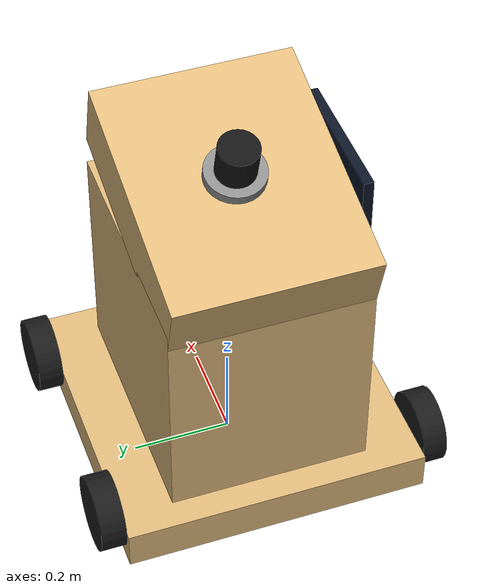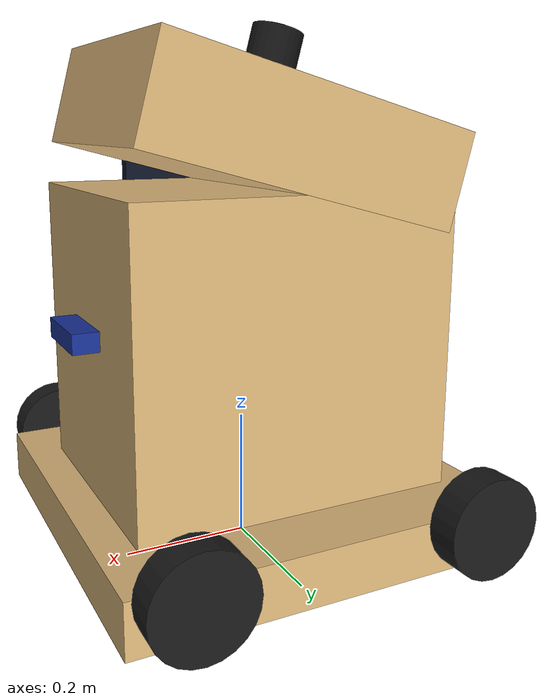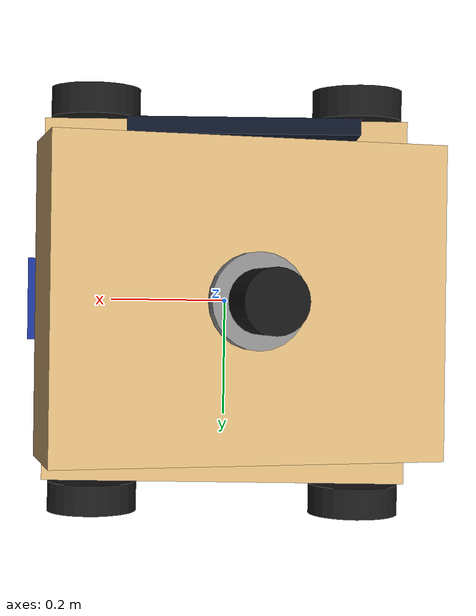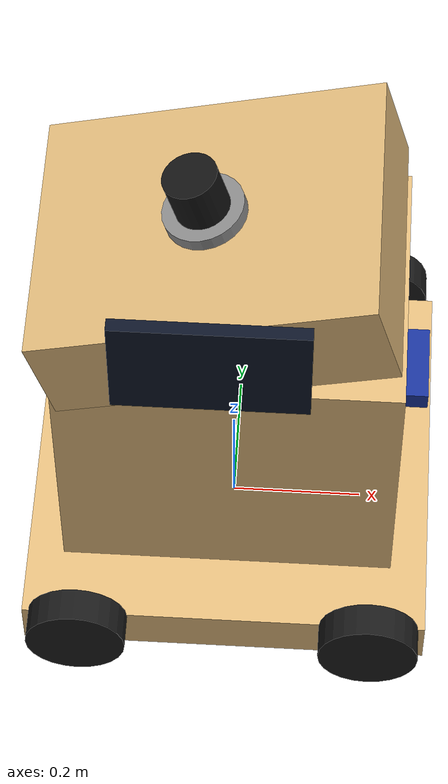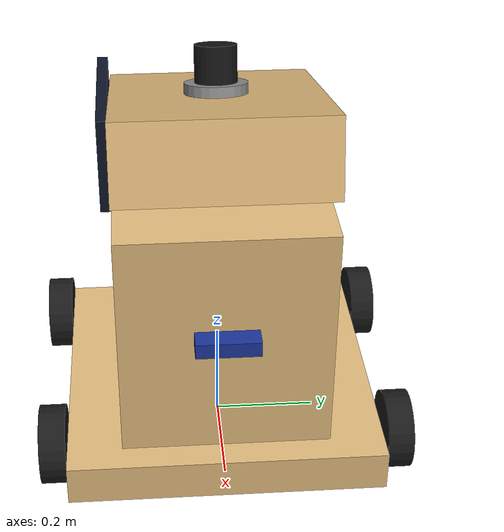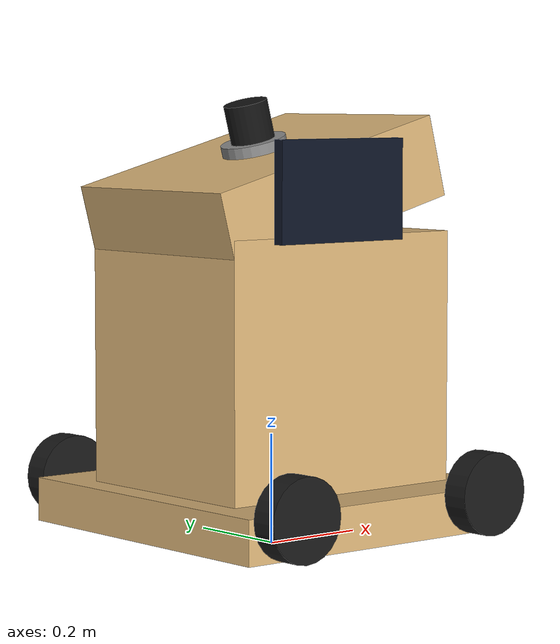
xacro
<?xml version="1.0"?>
<robot name="mobile_robot" xmlns:xacro="http://www.ros.org/wiki/xacro">

  <!-- Include materials and macros -->
  <xacro:include filename="$(find mobile_robot)/urdf/materials.xacro" />
  <xacro:include filename="$(find mobile_robot)/urdf/macros.xacro" />

  <!-- ======= ROBOT PROPERTIES ======= -->
  <!-- Base dimensions (2ft x 2ft x ~0.1m platform) -->
  <xacro:property name="base_length"  value="0.610" />  <!-- 2 ft -->
  <xacro:property name="base_width"   value="0.610" />  <!-- 2 ft -->
  <xacro:property name="base_height"  value="0.08"  />  <!-- platform thickness -->

  <!-- Main body (kiosk cabinet) -->
  <xacro:property name="body_length"  value="0.500" />
  <xacro:property name="body_width"   value="0.400" />
  <xacro:property name="body_height"  value="0.457" />  <!-- 1.5 ft -->

  <!-- Touchpad angled top section -->
  <xacro:property name="top_length"   value="0.500" />
  <xacro:property name="top_width"    value="0.400" />
  <xacro:property name="top_height"   value="0.15"  />

  <!-- LiDAR mount on flat top -->
  <xacro:property name="lidar_radius" value="0.04"  />
  <xacro:property name="lidar_height" value="0.07"  />

  <!-- Touchpad screen -->
  <xacro:property name="screen_length" value="0.28" />
  <xacro:property name="screen_width"  value="0.02" />
  <xacro:property name="screen_height" value="0.18" />

  <!-- Wheel properties -->
  <xacro:property name="wheel_radius"  value="0.075" />
  <xacro:property name="wheel_width"   value="0.05"  />
  <xacro:property name="wheel_x_off"   value="0.22"  />
  <xacro:property name="wheel_y_off"   value="0.33"  />

  <!-- Mass properties (kg) -->
  <xacro:property name="base_mass"    value="8.0"  />
  <xacro:property name="body_mass"    value="12.0" />
  <xacro:property name="top_mass"     value="3.0"  />
  <xacro:property name="wheel_mass"   value="0.8"  />
  <xacro:property name="lidar_mass"   value="0.2"  />
  <xacro:property name="screen_mass"  value="0.5"  />

  <!-- ======= INERTIA MACROS ======= -->
  <xacro:macro name="box_inertia" params="m l w h">
    <inertial>
      <mass value="${m}"/>
      <inertia
        ixx="${(m/12)*(w*w + h*h)}"
        ixy="0" ixz="0"
        iyy="${(m/12)*(l*l + h*h)}"
        iyz="0"
        izz="${(m/12)*(l*l + w*w)}"/>
    </inertial>
  </xacro:macro>

  <xacro:macro name="cylinder_inertia" params="m r h">
    <inertial>
      <mass value="${m}"/>
      <inertia
        ixx="${(m/12)*(3*r*r + h*h)}"
        ixy="0" ixz="0"
        iyy="${(m/12)*(3*r*r + h*h)}"
        iyz="0"
        izz="${(m/2)*r*r}"/>
    </inertial>
  </xacro:macro>

  <!-- ======= WHEEL MACRO ======= -->
  <xacro:macro name="wheel" params="name x_off y_off reflect">
    <link name="${name}_wheel">
      <visual>
        <origin xyz="0 0 0" rpy="${pi/2} 0 0"/>
        <geometry>
          <cylinder radius="${wheel_radius}" length="${wheel_width}"/>
        </geometry>
        <material name="dark_rubber"/>
      </visual>
      <collision>
        <origin xyz="0 0 0" rpy="${pi/2} 0 0"/>
        <geometry>
          <cylinder radius="${wheel_radius}" length="${wheel_width}"/>
        </geometry>
      </collision>
      <xacro:cylinder_inertia m="${wheel_mass}" r="${wheel_radius}" h="${wheel_width}"/>
    </link>

    <joint name="${name}_wheel_joint" type="continuous">
      <parent link="base_link"/>
      <child  link="${name}_wheel"/>
      <origin xyz="${x_off} ${reflect * y_off} ${wheel_radius - base_height/2}"
              rpy="0 0 0"/>
      <axis xyz="0 1 0"/>
      <dynamics damping="0.01" friction="0.5"/>
      <limit effort="10.0" velocity="5.0"/>
    </joint>

    <!-- Wheel transmission for ros2_control -->
    <transmission name="${name}_wheel_trans">
      <type>transmission_interface/SimpleTransmission</type>
      <joint name="${name}_wheel_joint">
        <hardwareInterface>hardware_interface/VelocityJointInterface</hardwareInterface>
      </joint>
      <actuator name="${name}_motor">
        <hardwareInterface>hardware_interface/VelocityJointInterface</hardwareInterface>
        <mechanicalReduction>1</mechanicalReduction>
      </actuator>
    </transmission>
  </xacro:macro>

  <!-- ========================================
       LINKS
       ======================================== -->

  <!--  BASE FOOTPRINT (ground projection) --  -->
  <link name="base_footprint">
    <visual>
      <geometry><box size="0.001 0.001 0.001"/></geometry>
    </visual>
  </link>

  <!--  BASE LINK (drive platform) --  -->
  <link name="base_link">
    <visual>
      <origin xyz="0 0 0" rpy="0 0 0"/>
      <geometry>
        <box size="${base_length} ${base_width} ${base_height}"/>
      </geometry>
      <material name="light_wood"/>
    </visual>
    <collision>
      <origin xyz="0 0 0" rpy="0 0 0"/>
      <geometry>
        <box size="${base_length} ${base_width} ${base_height}"/>
      </geometry>
    </collision>
    <xacro:box_inertia m="${base_mass}" l="${base_length}" w="${base_width}" h="${base_height}"/>
  </link>

  <!--  BODY LINK (main kiosk cabinet) --  -->
  <link name="body_link">
    <visual>
      <origin xyz="0 0 ${body_height/2}" rpy="0 0 0"/>
      <geometry>
        <box size="${body_length} ${body_width} ${body_height}"/>
      </geometry>
      <material name="light_wood"/>
    </visual>
    <collision>
      <origin xyz="0 0 ${body_height/2}" rpy="0 0 0"/>
      <geometry>
        <box size="${body_length} ${body_width} ${body_height}"/>
      </geometry>
    </collision>
    <xacro:box_inertia m="${body_mass}" l="${body_length}" w="${body_width}" h="${body_height}"/>
  </link>

  <!--  ANGLED TOP SECTION (touchpad housing, tilted back ~15 deg) --  -->
  <link name="top_section_link">
    <visual>
      <origin xyz="0 0 ${top_height/2}" rpy="0 0 0"/>
      <geometry>
        <box size="${top_length} ${top_width} ${top_height}"/>
      </geometry>
      <material name="light_wood"/>
    </visual>
    <collision>
      <origin xyz="0 0 ${top_height/2}" rpy="0 0 0"/>
      <geometry>
        <box size="${top_length} ${top_width} ${top_height}"/>
      </geometry>
    </collision>
    <xacro:box_inertia m="${top_mass}" l="${top_length}" w="${top_width}" h="${top_height}"/>
  </link>

  <!--  TOUCHPAD / SCREEN --  -->
  <link name="touchpad_link">
    <visual>
      <origin xyz="0 0 0" rpy="0 0 0"/>
      <geometry>
        <box size="${screen_length} ${screen_width} ${screen_height}"/>
      </geometry>
      <material name="screen_dark"/>
    </visual>
    <collision>
      <origin xyz="0 0 0" rpy="0 0 0"/>
      <geometry>
        <box size="${screen_length} ${screen_width} ${screen_height}"/>
      </geometry>
    </collision>
    <xacro:box_inertia m="${screen_mass}" l="${screen_length}" w="${screen_width}" h="${screen_height}"/>
  </link>

  <!--  LIDAR MOUNT PLATE --  -->
  <link name="lidar_mount_link">
    <visual>
      <origin xyz="0 0 0" rpy="0 0 0"/>
      <geometry>
        <cylinder radius="${lidar_radius + 0.02}" length="0.02"/>
      </geometry>
      <material name="metal_grey"/>
    </visual>
    <collision>
      <origin xyz="0 0 0" rpy="0 0 0"/>
      <geometry>
        <cylinder radius="${lidar_radius + 0.02}" length="0.02"/>
      </geometry>
    </collision>
    <xacro:cylinder_inertia m="0.1" r="${lidar_radius + 0.02}" h="0.02"/>
  </link>

  <!--  LIDAR SENSOR LINK --  -->
  <link name="lidar_link">
    <visual>
      <origin xyz="0 0 0" rpy="0 0 0"/>
      <geometry>
        <cylinder radius="${lidar_radius}" length="${lidar_height}"/>
      </geometry>
      <material name="lidar_black"/>
    </visual>
    <collision>
      <origin xyz="0 0 0" rpy="0 0 0"/>
      <geometry>
        <cylinder radius="${lidar_radius}" length="${lidar_height}"/>
      </geometry>
    </collision>
    <xacro:cylinder_inertia m="${lidar_mass}" r="${lidar_radius}" h="${lidar_height}"/>
  </link>

  <!--  LASER SCAN FRAME (sensor origin, z-up) --  -->
  <link name="laser_frame"/>

  <!--  IMU LINK --  -->
  <link name="imu_link"/>

  <!--  CAMERA LINK (optional front-facing) --  -->
  <link name="camera_link">
    <visual>
      <origin xyz="0 0 0" rpy="0 0 0"/>
      <geometry>
        <box size="0.04 0.12 0.03"/>
      </geometry>
      <material name="camera_blue"/>
    </visual>
    <collision>
      <origin xyz="0 0 0" rpy="0 0 0"/>
      <geometry>
        <box size="0.04 0.12 0.03"/>
      </geometry>
    </collision>
    <xacro:box_inertia m="0.1" l="0.04" w="0.12" h="0.03"/>
  </link>
  <link name="camera_optical_frame"/>

  <!-- ========================================
       JOINTS
       ======================================== -->

  <!-- base_footprint → base_link -->
  <joint name="base_footprint_joint" type="fixed">
    <parent link="base_footprint"/>
    <child  link="base_link"/>
    <origin xyz="0 0 ${wheel_radius}" rpy="0 0 0"/>
  </joint>

  <!-- base_link → body_link (cabinet sits on top of platform) -->
  <joint name="body_joint" type="fixed">
    <parent link="base_link"/>
    <child  link="body_link"/>
    <origin xyz="0 0 ${base_height/2}" rpy="0 0 0"/>
  </joint>

  <!-- body_link → top_section_link (angled kiosk top, slight back tilt) -->
  <joint name="top_section_joint" type="fixed">
    <parent link="body_link"/>
    <child  link="top_section_link"/>
    <origin xyz="0 0 ${body_height}" rpy="0 -0.26 0"/>
  </joint>

  <!-- top_section_link → touchpad_link (front face of angled top) -->
  <joint name="touchpad_joint" type="fixed">
    <parent link="top_section_link"/>
    <child  link="touchpad_link"/>
    <origin xyz="0 ${-top_width/2 - screen_width/2} ${top_height * 0.55}" rpy="0 0.26 0"/>
  </joint>

  <!-- top_section_link → lidar_mount_link -->
  <joint name="lidar_mount_joint" type="fixed">
    <parent link="top_section_link"/>
    <child  link="lidar_mount_link"/>
    <origin xyz="0 0 ${top_height + 0.01}" rpy="0 0 0"/>
  </joint>

  <!-- lidar_mount_link → lidar_link -->
  <joint name="lidar_joint" type="fixed">
    <parent link="lidar_mount_link"/>
    <child  link="lidar_link"/>
    <origin xyz="0 0 ${lidar_height/2 + 0.01}" rpy="0 0 0"/>
  </joint>

  <!-- lidar_link → laser_frame (the actual scan plane) -->
  <joint name="laser_frame_joint" type="fixed">
    <parent link="lidar_link"/>
    <child  link="laser_frame"/>
    <origin xyz="0 0 ${lidar_height/2}" rpy="0 0 0"/>
  </joint>

  <!-- base_link → imu_link -->
  <joint name="imu_joint" type="fixed">
    <parent link="base_link"/>
    <child  link="imu_link"/>
    <origin xyz="0 0 ${base_height/2}" rpy="0 0 0"/>
  </joint>

  <!-- body_link → camera_link (front-mounted at mid-body height) -->
  <joint name="camera_joint" type="fixed">
    <parent link="body_link"/>
    <child  link="camera_link"/>
    <origin xyz="${body_length/2 + 0.02} 0 ${body_height * 0.55}" rpy="0 0 0"/>
  </joint>

  <!-- camera_link → camera_optical_frame (ROS optical convention) -->
  <joint name="camera_optical_joint" type="fixed">
    <parent link="camera_link"/>
    <child  link="camera_optical_frame"/>
    <origin xyz="0 0 0" rpy="${-pi/2} 0 ${-pi/2}"/>
  </joint>

  <!-- ======= WHEELS (4-wheel differential) ======= -->
  <!-- front-left, front-right, rear-left, rear-right -->
  <xacro:wheel name="front_left"  x_off="${wheel_x_off}"  y_off="${wheel_y_off}"  reflect="1"/>
  <xacro:wheel name="front_right" x_off="${wheel_x_off}"  y_off="${wheel_y_off}"  reflect="-1"/>
  <xacro:wheel name="rear_left"   x_off="${-wheel_x_off}" y_off="${wheel_y_off}"  reflect="1"/>
  <xacro:wheel name="rear_right"  x_off="${-wheel_x_off}" y_off="${wheel_y_off}"  reflect="-1"/>

  <!-- ========================================
       GAZEBO / ros2_control PLUGINS
       ======================================== -->
  <xacro:include filename="$(find mobile_robot)/urdf/gazebo.xacro" />

</robot>

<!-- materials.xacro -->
<robot name="mobile_robot_materials" xmlns:xacro="http://www.ros.org/wiki/xacro">

  <!-- ===== MATERIALS ===== -->

  <material name="light_wood">
    <color rgba="0.87 0.72 0.48 1.0"/>
  </material>

  <material name="dark_rubber">
    <color rgba="0.10 0.10 0.10 1.0"/>
  </material>

  <material name="metal_grey">
    <color rgba="0.55 0.55 0.55 1.0"/>
  </material>

  <material name="lidar_black">
    <color rgba="0.08 0.08 0.08 1.0"/>
  </material>

  <material name="screen_dark">
    <color rgba="0.05 0.08 0.15 0.95"/>
  </material>

  <material name="camera_blue">
    <color rgba="0.10 0.20 0.60 1.0"/>
  </material>

  <material name="white">
    <color rgba="1.0 1.0 1.0 1.0"/>
  </material>

  <material name="red">
    <color rgba="0.8 0.0 0.0 1.0"/>
  </material>

  <material name="green">
    <color rgba="0.0 0.8 0.0 1.0"/>
  </material>

</robot>

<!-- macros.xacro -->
<robot name="mobile_robot_macros" xmlns:xacro="http://www.ros.org/wiki/xacro">

  <!-- ===== COMMON CONSTANTS ===== -->
  <xacro:property name="pi" value="3.14159265358979"/>

  <!-- ===== UTILITY: zero-mass dummy link for sensors ===== -->
  <xacro:macro name="dummy_inertial">
    <inertial>
      <mass value="0.001"/>
      <inertia ixx="0.0001" ixy="0" ixz="0"
               iyy="0.0001" iyz="0"
               izz="0.0001"/>
    </inertial>
  </xacro:macro>

</robot>
